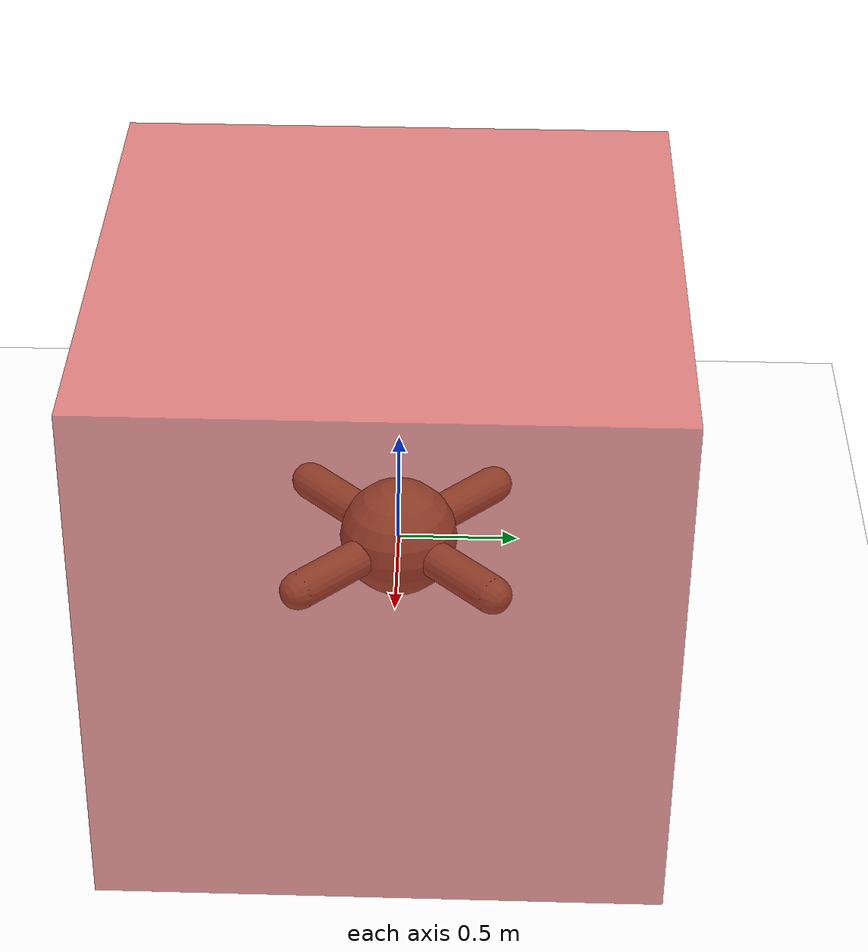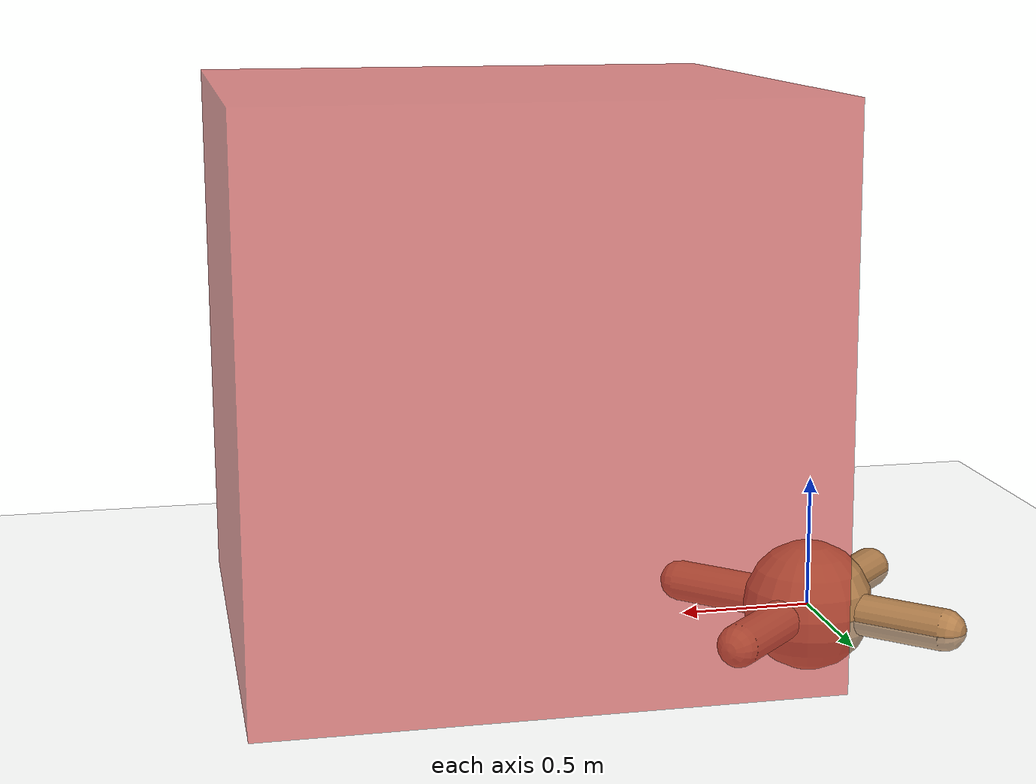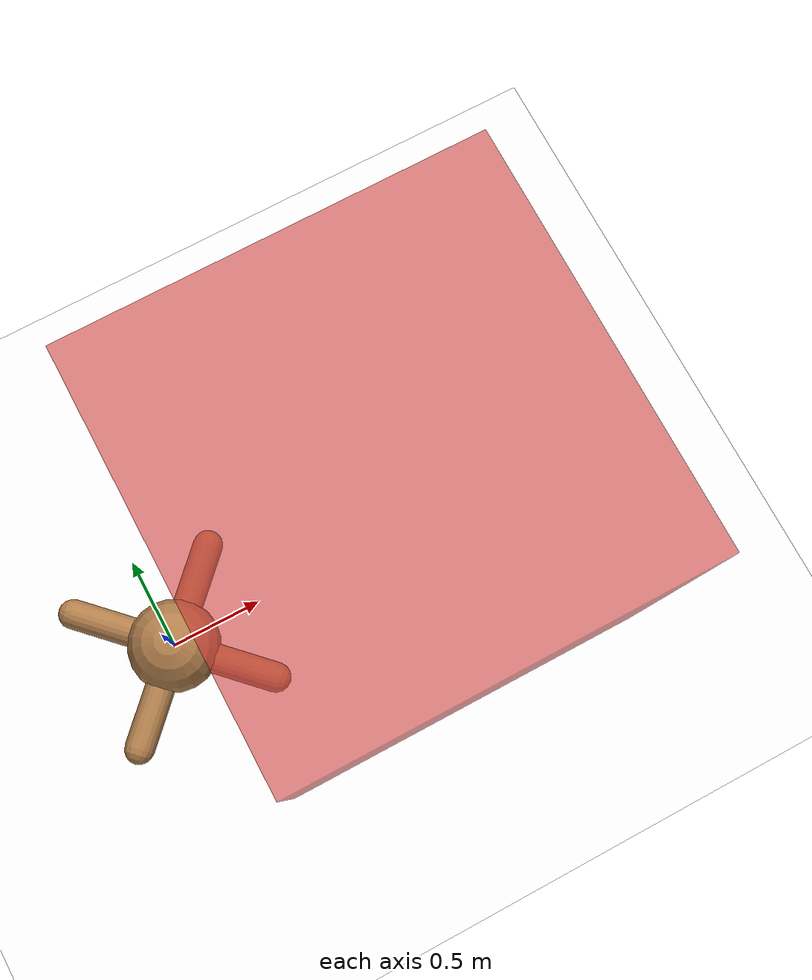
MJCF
<mujoco model="ant">
  <asset>
    <texture name="skybox" type="skybox" builtin="gradient" rgb1=".2 .3 .4" rgb2="0 0 0" width="800" height="800" mark="random" markrgb="1 1 1"/>
    <texture name="grid" type="2d" builtin="checker" rgb1=".2 .1 .2" rgb2=".3 .2 .3" width="300" height="300" mark="edge" markrgb=".3 .2 .3"/>
    <material name="grid" texture="grid" texrepeat="1 1" texuniform="true" reflectance=".2"/>
    <material name="self" rgba=".7 .5 .3 1"/>
    <material name="plain_white" rgba="1 1 1 1" specular="0" shininess="0"/>
  </asset>
  <visual>
    <headlight ambient=".4 .4 .4" diffuse=".8 .8 .8" specular="0 0 0"/>
    <map znear=".001"/>
    <quality shadowsize="16384"/>
  </visual>
  <compiler angle="degree" coordinate="global" inertiafromgeom="true"/>
  <option integrator="RK4" timestep="0.01"/>
  <default>
    <joint armature="1" damping="1" limited="true"/>
    <geom conaffinity="0" condim="3" density="5.0" friction="1.0 0.5 0.5" margin="0.01" rgba=".7 .5 .3 1"/>
  </default>
  <worldbody>
    <light cutoff="100" diffuse="1 1 1" dir="0.3 0 -1.3" directional="true" exponent="1" pos="-30 0 130" specular=".1 .1 .1"/>
    <geom conaffinity="1" condim="3" name="floor" pos="0 0 0" rgba="1 1 1 1" size="200 200 .125" type="plane" material="grid"/>
    <body name="0" pos="0 0 0">
      <camera name="track" mode="trackcom" pos="0 -3 0.3" xyaxes="1 0 0 0 0 1"/>
      <geom pos="0 0 0" size="0.25" type="sphere"/>
      <joint armature="0" damping="0" limited="false" margin="0.01" name="root" pos="0 0 0" type="free"/>
      <body name="1" pos="0 0 0">
        <joint axis="-0.707107 0.707107 0" name="1_joint" pos="0 0 0" range="-30 30" type="hinge"/>
        <geom fromto="0 0 0 0.4 0.4 0" size="0.08" type="capsule"/>
      </body>
      <body name="2" pos="0 0 0">
        <joint axis="-0.707107 -0.707107 0" name="2_joint" pos="0 0 0" range="-30 30" type="hinge"/>
        <geom fromto="0 0 0 -0.4 0.4 0" size="0.08" type="capsule"/>
      </body>
      <body name="3" pos="0 0 0">
        <joint axis="0.707107 -0.707107 0" name="3_joint" pos="0 0 0" range="-30 30" type="hinge"/>
        <geom fromto="0 0 0 -0.4 -0.4 0" size="0.08" type="capsule"/>
      </body>
      <body name="4" pos="0 0 0">
        <joint axis="0.707107 0.707107 0" name="4_joint" pos="0 0 0" range="-30 30" type="hinge"/>
        <geom fromto="0 0 0 0.4 -0.4 0" size="0.08" type="capsule"/>
      </body>
    </body>
    <body name="cube" pos="0 0 0">
      <joint name="cube_slide" type="slide" axis="1 0 0" pos="1.2 0 1.02" damping="5.0" range="0  200"/>
      <joint name="cube_slide2" type="slide" axis="0 1 0" pos="1.2 0 1.02" damping="5.0" range="-100  100"/>
      <geom pos="1.2 0 1.02" name="cube_geom" type="box" size="1.0 1.0 1.0" rgba="0.8 0.2 0.2 0.6" friction="0 0 0" density="1" contype="1" conaffinity="1" />
    </body>
  </worldbody>
  <actuator>
    <motor ctrllimited="true" ctrlrange="-1.0 1.0" joint="1_joint" gear="150" name="1_joint"/>
    <motor ctrllimited="true" ctrlrange="-1.0 1.0" joint="2_joint" gear="150" name="2_joint"/>
    <motor ctrllimited="true" ctrlrange="-1.0 1.0" joint="3_joint" gear="150" name="3_joint"/>
    <motor ctrllimited="true" ctrlrange="-1.0 1.0" joint="4_joint" gear="150" name="4_joint"/>
  </actuator>
</mujoco>
